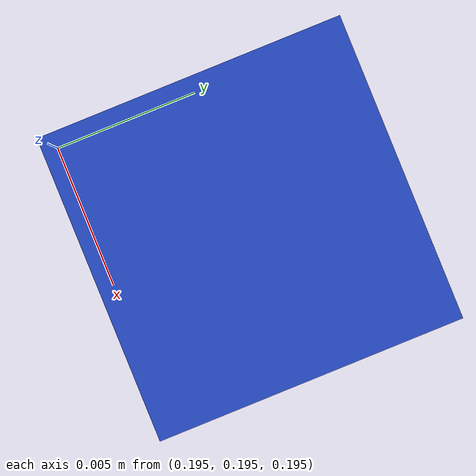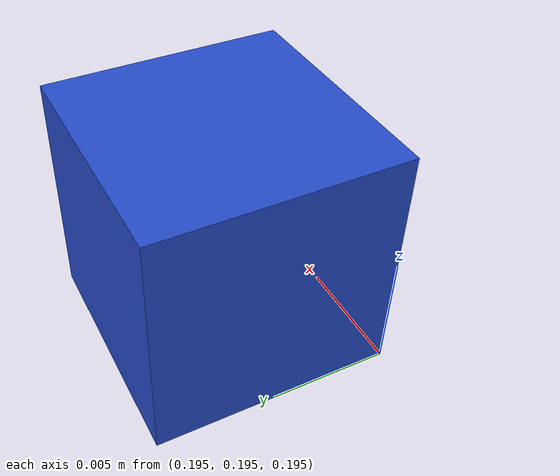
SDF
<sdf version="1.6">
 <world name="default">
  <light name="sun" type="directional">
   <pose>0 0 10 0 -0 0</pose>
   <diffuse>0.8 0.8 0.8 1</diffuse>
   <specular>0.2 0.2 0.2 1</specular>
   <attenuation>
    <range>1000</range>
    <constant>0.9</constant>
    <linear>0.01</linear>
    <quadratic>0.001</quadratic>
   </attenuation>
   <direction>-0.5 0.1 -0.9</direction>
  </light>
  <model name="ground_plane">
   <static>1</static>
   <link name="link">
    <visual name="visual">
     <cast_shadows>0</cast_shadows>
     <geometry><plane><normal>0 0 1</normal><size>100 100</size></plane></geometry>
     <material>
      <script><uri>file://media/materials/scripts/gazebo.material</uri><name>Gazebo/Grey</name></script>
     </material>
    </visual>
   </link>
  </model>
  <gravity>0 0 0</gravity>
  <magnetic_field>6e-06 2.3e-05 -4.2e-05</magnetic_field>
  <atmosphere type="adiabatic"/>
  <physics name="default_physics" default="0" type="ode">
   <max_step_size>0.005</max_step_size>
   <real_time_factor>1</real_time_factor>
   <real_time_update_rate>2000</real_time_update_rate>
  </physics>
  <scene><ambient>0.4 0.4 0.4 1</ambient><background>0.7 0.7 0.7 1</background><shadows>1</shadows></scene>
  <audio><device>default</device></audio>
  <model name="cube">
   <static>1</static>
   <pose>0.2 0.2 0.2 0.0 0.0 0.0</pose>
   <mass>1</mass>
   <link name="link1">
    <visual name="visual">
     <cast_shadows>0</cast_shadows>
     <geometry><box><size>0.01 0.01 0.01</size></box></geometry>
     <material>
      <script><uri>file://media/materials/scripts/gazebo.material</uri><name>Gazebo/Blue</name></script>
     </material>
    </visual>
   </link>
  </model>
  <spherical_coordinates>
   <surface_model>EARTH_WGS84</surface_model>
   <latitude_deg>0</latitude_deg>
   <longitude_deg>0</longitude_deg>
   <elevation>0</elevation>
   <heading_deg>0</heading_deg>
  </spherical_coordinates>
 </world>
</sdf>
